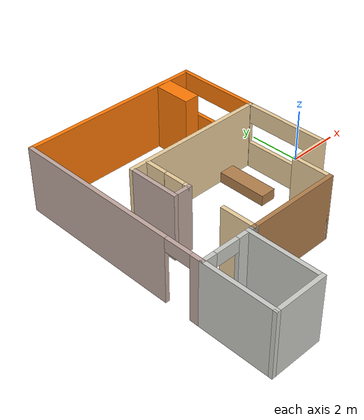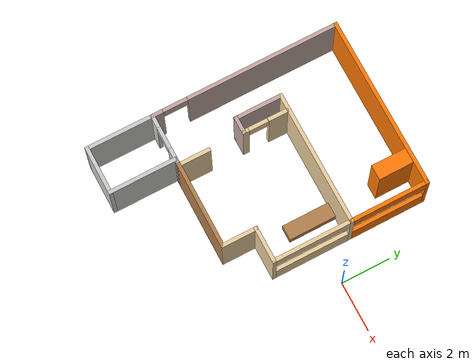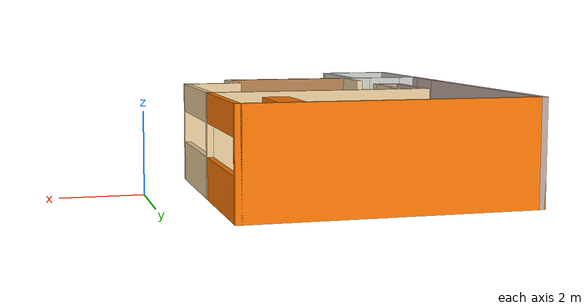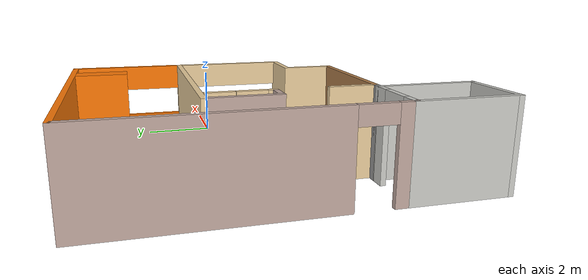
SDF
<?xml version='1.0'?>
<sdf version='1.6'>
  <model name='house'>
    <pose frame=''>-4.827 -0.992 0 0 -0 0</pose>
    <link name='Wall_10'>
      <pose frame=''>-2.5 -2.475 0 0 -0 0</pose>
      <visual name='Wall_10_Visual_0'>
        <pose frame=''>-0.717586 0 1.25 0 -0 0</pose>
        <geometry>
          <box>
            <size>0.564828 0.15 2.5</size>
          </box>
        </geometry>
        <material>
          <script>
            <uri>file://media/materials/scripts/gazebo.material</uri>
            <name>Gazebo/CeilingTiled</name>
          </script>
          <ambient>1 1 1 1</ambient>
        </material>
        <meta>
          <layer>0</layer>
        </meta>
      </visual>
      <collision name='Wall_10_Collision_0'>
        <geometry>
          <box>
            <size>0.564828 0.15 2.5</size>
          </box>
        </geometry>
        <pose frame=''>-0.717586 0 1.25 0 -0 0</pose>
      </collision>
      <visual name='Wall_10_Visual_1'>
        <pose frame=''>0.732414 0 1.25 0 -0 0</pose>
        <geometry>
          <box>
            <size>0.535172 0.15 2.5</size>
          </box>
        </geometry>
        <material>
          <script>
            <uri>file://media/materials/scripts/gazebo.material</uri>
            <name>Gazebo/CeilingTiled</name>
          </script>
          <ambient>1 1 1 1</ambient>
        </material>
        <meta>
          <layer>0</layer>
        </meta>
      </visual>
      <collision name='Wall_10_Collision_1'>
        <geometry>
          <box>
            <size>0.535172 0.15 2.5</size>
          </box>
        </geometry>
        <pose frame=''>0.732414 0 1.25 0 -0 0</pose>
      </collision>
      <visual name='Wall_10_Visual_2'>
        <pose frame=''>0.014828 0 2.25 0 -0 0</pose>
        <geometry>
          <box>
            <size>0.9 0.15 0.5</size>
          </box>
        </geometry>
        <material>
          <script>
            <uri>file://media/materials/scripts/gazebo.material</uri>
            <name>Gazebo/CeilingTiled</name>
          </script>
          <ambient>1 1 1 1</ambient>
        </material>
        <meta>
          <layer>0</layer>
        </meta>
      </visual>
      <collision name='Wall_10_Collision_2'>
        <geometry>
          <box>
            <size>0.9 0.15 0.5</size>
          </box>
        </geometry>
        <pose frame=''>0.014828 0 2.25 0 -0 0</pose>
      </collision>
    </link>
    <link name='Wall_11'>
      <collision name='Wall_11_Collision'>
        <geometry>
          <box>
            <size>2.8 0.15 2.5</size>
          </box>
        </geometry>
        <pose frame=''>0 0 1.25 0 -0 0</pose>
      </collision>
      <visual name='Wall_11_Visual'>
        <pose frame=''>0 0 1.25 0 -0 0</pose>
        <geometry>
          <box>
            <size>2.8 0.15 2.5</size>
          </box>
        </geometry>
        <material>
          <script>
            <uri>file://media/materials/scripts/gazebo.material</uri>
            <name>Gazebo/CeilingTiled</name>
          </script>
          <ambient>1 1 1 1</ambient>
        </material>
        <meta>
          <layer>0</layer>
        </meta>
      </visual>
      <pose frame=''>-1.575 -3.8 0 0 0 -1.5708</pose>
    </link>
    <link name='Wall_13'>
      <collision name='Wall_13_Collision'>
        <geometry>
          <box>
            <size>2 0.15 2.5</size>
          </box>
        </geometry>
        <pose frame=''>0 0 1.25 0 -0 0</pose>
      </collision>
      <visual name='Wall_13_Visual'>
        <pose frame=''>0 0 1.25 0 -0 0</pose>
        <geometry>
          <box>
            <size>2 0.15 2.5</size>
          </box>
        </geometry>
        <material>
          <script>
            <uri>file://media/materials/scripts/gazebo.material</uri>
            <name>Gazebo/CeilingTiled</name>
          </script>
          <ambient>1 1 1 1</ambient>
        </material>
        <meta>
          <layer>0</layer>
        </meta>
      </visual>
      <pose frame=''>-2.5 -5.125 0 0 -0 3.14159</pose>
    </link>
    <link name='Wall_15'>
      <pose frame=''>-3.425 1.325 0 0 -0 1.5708</pose>
      <visual name='Wall_15_Visual_0'>
        <pose frame=''>-3.62716 0 1.25 0 -0 0</pose>
        <geometry>
          <box>
            <size>0.495682 0.15 2.5</size>
          </box>
        </geometry>
        <material>
          <script>
            <uri>file://media/materials/scripts/gazebo.material</uri>
            <name>Gazebo/Grey</name>
          </script>
          <ambient>0.760784 0.662745 0.627451 1</ambient>
        </material>
        <meta>
          <layer>0</layer>
        </meta>
      </visual>
      <collision name='Wall_15_Collision_0'>
        <geometry>
          <box>
            <size>0.495682 0.15 2.5</size>
          </box>
        </geometry>
        <pose frame=''>-3.62716 0 1.25 0 -0 0</pose>
      </collision>
      <visual name='Wall_15_Visual_1'>
        <pose frame=''>0.747841 0 1.25 0 -0 0</pose>
        <geometry>
          <box>
            <size>6.25432 0.15 2.5</size>
          </box>
        </geometry>
        <material>
          <script>
            <uri>file://media/materials/scripts/gazebo.material</uri>
            <name>Gazebo/Grey</name>
          </script>
          <ambient>0.760784 0.662745 0.627451 1</ambient>
        </material>
        <meta>
          <layer>0</layer>
        </meta>
      </visual>
      <collision name='Wall_15_Collision_1'>
        <geometry>
          <box>
            <size>6.25432 0.15 2.5</size>
          </box>
        </geometry>
        <pose frame=''>0.747841 0 1.25 0 -0 0</pose>
      </collision>
      <visual name='Wall_15_Visual_2'>
        <pose frame=''>-2.87932 0 2.25 0 -0 0</pose>
        <geometry>
          <box>
            <size>1 0.15 0.5</size>
          </box>
        </geometry>
        <material>
          <script>
            <uri>file://media/materials/scripts/gazebo.material</uri>
            <name>Gazebo/Grey</name>
          </script>
          <ambient>0.760784 0.662745 0.627451 1</ambient>
        </material>
        <meta>
          <layer>0</layer>
        </meta>
      </visual>
      <collision name='Wall_15_Collision_2'>
        <geometry>
          <box>
            <size>1 0.15 0.5</size>
          </box>
        </geometry>
        <pose frame=''>-2.87932 0 2.25 0 -0 0</pose>
      </collision>
    </link>
    <link name='Wall_17'>
      <collision name='Wall_17_Collision'>
        <geometry>
          <box>
            <size>7 0.15 2.5</size>
          </box>
        </geometry>
        <pose frame=''>0 0 1.25 0 -0 0</pose>
      </collision>
      <visual name='Wall_17_Visual'>
        <pose frame=''>0 0 1.25 0 -0 0</pose>
        <geometry>
          <box>
            <size>7 0.15 2.5</size>
          </box>
        </geometry>
        <material>
          <script>
            <uri>file://media/materials/scripts/gazebo.material</uri>
            <name>Gazebo/Grey</name>
          </script>
          <ambient>0.996078 0.47451 0.0196078 1</ambient>
        </material>
        <meta>
          <layer>0</layer>
        </meta>
      </visual>
      <pose frame=''>0 5.125 0 0 -0 0</pose>
    </link>
    <link name='Wall_18'>
      <pose frame=''>3.425 3.575 0 0 0 -1.5708</pose>
      <visual name='Wall_18_Visual_0'>
        <pose frame=''>-1.55285 0 1.25 0 -0 0</pose>
        <geometry>
          <box>
            <size>0.144301 0.15 2.5</size>
          </box>
        </geometry>
        <material>
          <script>
            <uri>file://media/materials/scripts/gazebo.material</uri>
            <name>Gazebo/Grey</name>
          </script>
          <ambient>0.996078 0.47451 0.0196078 1</ambient>
        </material>
        <meta>
          <layer>0</layer>
        </meta>
      </visual>
      <collision name='Wall_18_Collision_0'>
        <geometry>
          <box>
            <size>0.144301 0.15 2.5</size>
          </box>
        </geometry>
        <pose frame=''>-1.55285 0 1.25 0 -0 0</pose>
      </collision>
      <visual name='Wall_18_Visual_1'>
        <pose frame=''>0.072151 0 0.5 0 -0 0</pose>
        <geometry>
          <box>
            <size>3.1057 0.15 1</size>
          </box>
        </geometry>
        <material>
          <script>
            <uri>file://media/materials/scripts/gazebo.material</uri>
            <name>Gazebo/Grey</name>
          </script>
          <ambient>0.996078 0.47451 0.0196078 1</ambient>
        </material>
        <meta>
          <layer>0</layer>
        </meta>
      </visual>
      <collision name='Wall_18_Collision_1'>
        <geometry>
          <box>
            <size>3.1057 0.15 1</size>
          </box>
        </geometry>
        <pose frame=''>0.072151 0 0.5 0 -0 0</pose>
      </collision>
      <visual name='Wall_18_Visual_2'>
        <pose frame=''>1.57465 0 1.75 0 -0 0</pose>
        <geometry>
          <box>
            <size>0.100699 0.15 1.5</size>
          </box>
        </geometry>
        <material>
          <script>
            <uri>file://media/materials/scripts/gazebo.material</uri>
            <name>Gazebo/Grey</name>
          </script>
          <ambient>0.996078 0.47451 0.0196078 1</ambient>
        </material>
        <meta>
          <layer>0</layer>
        </meta>
      </visual>
      <collision name='Wall_18_Collision_2'>
        <geometry>
          <box>
            <size>0.100699 0.15 1.5</size>
          </box>
        </geometry>
        <pose frame=''>1.57465 0 1.75 0 -0 0</pose>
      </collision>
      <visual name='Wall_18_Visual_3'>
        <pose frame=''>0.021801 0 2.15 0 -0 0</pose>
        <geometry>
          <box>
            <size>3.005 0.15 0.7</size>
          </box>
        </geometry>
        <material>
          <script>
            <uri>file://media/materials/scripts/gazebo.material</uri>
            <name>Gazebo/Grey</name>
          </script>
          <ambient>0.996078 0.47451 0.0196078 1</ambient>
        </material>
        <meta>
          <layer>0</layer>
        </meta>
      </visual>
      <collision name='Wall_18_Collision_3'>
        <geometry>
          <box>
            <size>3.005 0.15 0.7</size>
          </box>
        </geometry>
        <pose frame=''>0.021801 0 2.15 0 -0 0</pose>
      </collision>
    </link>
    <link name='Wall_19'>
      <collision name='Wall_19_Collision'>
        <geometry>
          <box>
            <size>5.5 0.15 2.5</size>
          </box>
        </geometry>
        <pose frame=''>0 0 1.25 0 -0 0</pose>
      </collision>
      <visual name='Wall_19_Visual'>
        <pose frame=''>0 0 1.25 0 -0 0</pose>
        <geometry>
          <box>
            <size>5.5 0.15 2.5</size>
          </box>
        </geometry>
        <material>
          <script>
            <uri>file://media/materials/scripts/gazebo.material</uri>
            <name>Gazebo/Grey</name>
          </script>
          <ambient>0.921569 0.807843 0.615686 1</ambient>
        </material>
        <meta>
          <layer>0</layer>
        </meta>
      </visual>
      <pose frame=''>0.75 2.025 0 0 -0 3.14159</pose>
    </link>
    <link name='Wall_2'>
      <collision name='Wall_2_Collision'>
        <geometry>
          <box>
            <size>2.8 0.15 2.5</size>
          </box>
        </geometry>
        <pose frame=''>0 0 1.25 0 -0 0</pose>
      </collision>
      <visual name='Wall_2_Visual'>
        <pose frame=''>0 0 1.25 0 -0 0</pose>
        <geometry>
          <box>
            <size>2.8 0.15 2.5</size>
          </box>
        </geometry>
        <material>
          <script>
            <uri>file://media/materials/scripts/gazebo.material</uri>
            <name>Gazebo/CeilingTiled</name>
          </script>
          <ambient>1 1 1 1</ambient>
        </material>
        <meta>
          <layer>0</layer>
        </meta>
      </visual>
      <pose frame=''>-3.425 -3.8 0 0 -0 1.5708</pose>
    </link>
    <link name='Wall_23'>
      <collision name='Wall_23_Collision'>
        <geometry>
          <box>
            <size>2 0.15 2.5</size>
          </box>
        </geometry>
        <pose frame=''>0 0 1.25 0 -0 0</pose>
      </collision>
      <visual name='Wall_23_Visual'>
        <pose frame=''>0 0 1.25 0 -0 0</pose>
        <geometry>
          <box>
            <size>2 0.15 2.5</size>
          </box>
        </geometry>
        <material>
          <script>
            <uri>file://media/materials/scripts/gazebo.material</uri>
            <name>Gazebo/Grey</name>
          </script>
          <ambient>0.760784 0.662745 0.627451 1</ambient>
        </material>
        <meta>
          <layer>0</layer>
        </meta>
      </visual>
      <pose frame=''>-1.925 1.1 0 0 0 -1.5708</pose>
    </link>
    <link name='Wall_24'>
      <collision name='Wall_24_Collision'>
        <geometry>
          <box>
            <size>0.75 0.15 2.5</size>
          </box>
        </geometry>
        <pose frame=''>0 0 1.25 0 -0 0</pose>
      </collision>
      <visual name='Wall_24_Visual'>
        <pose frame=''>0 0 1.25 0 -0 0</pose>
        <geometry>
          <box>
            <size>0.75 0.15 2.5</size>
          </box>
        </geometry>
        <material>
          <script>
            <uri>file://media/materials/scripts/gazebo.material</uri>
            <name>Gazebo/Grey</name>
          </script>
          <ambient>0.760784 0.662745 0.627451 1</ambient>
        </material>
        <meta>
          <layer>0</layer>
        </meta>
      </visual>
      <pose frame=''>-1.625 0.175 0 0 -0 0</pose>
    </link>
    <link name='Wall_37'>
      <collision name='Wall_37_Collision'>
        <geometry>
          <box>
            <size>1.35 0.15 2.5</size>
          </box>
        </geometry>
        <pose frame=''>0 0 1.25 0 -0 0</pose>
      </collision>
      <visual name='Wall_37_Visual'>
        <pose frame=''>0 0 1.25 0 -0 0</pose>
        <geometry>
          <box>
            <size>1.35 0.15 2.5</size>
          </box>
        </geometry>
        <material>
          <script>
            <uri>file://media/materials/scripts/gazebo.material</uri>
            <name>Gazebo/Grey</name>
          </script>
          <ambient>0.921569 0.807843 0.615686 1</ambient>
        </material>
        <meta>
          <layer>0</layer>
        </meta>
      </visual>
      <pose frame=''>-1.325 -1.875 0 0 0 -1.5708</pose>
    </link>
    <link name='Wall_39'>
      <collision name='Wall_39_Collision'>
        <geometry>
          <box>
            <size>0.4 0.15 2.5</size>
          </box>
        </geometry>
        <pose frame=''>0 0 1.25 0 -0 0</pose>
      </collision>
      <visual name='Wall_39_Visual'>
        <pose frame=''>0 0 1.25 0 -0 0</pose>
        <geometry>
          <box>
            <size>0.4 0.15 2.5</size>
          </box>
        </geometry>
        <material>
          <script>
            <uri>file://media/materials/scripts/gazebo.material</uri>
            <name>Gazebo/Grey</name>
          </script>
          <ambient>1 1 1 1</ambient>
        </material>
        <meta>
          <layer>0</layer>
        </meta>
      </visual>
      <pose frame=''>-1.45 -2.475 0 0 -0 3.14159</pose>
    </link>
    <link name='Wall_41'>
      <pose frame=''>-1.325 1.1 0 0 -0 1.5708</pose>
      <visual name='Wall_41_Visual_0'>
        <pose frame=''>-0.864061 0 1.25 0 -0 0</pose>
        <geometry>
          <box>
            <size>0.271877 0.15 2.5</size>
          </box>
        </geometry>
        <material>
          <script>
            <uri>file://media/materials/scripts/gazebo.material</uri>
            <name>Gazebo/Grey</name>
          </script>
          <ambient>0.921569 0.807843 0.615686 1</ambient>
        </material>
        <meta>
          <layer>0</layer>
        </meta>
      </visual>
      <collision name='Wall_41_Collision_0'>
        <geometry>
          <box>
            <size>0.271877 0.15 2.5</size>
          </box>
        </geometry>
        <pose frame=''>-0.864061 0 1.25 0 -0 0</pose>
      </collision>
      <visual name='Wall_41_Visual_1'>
        <pose frame=''>0.535939 0 1.25 0 -0 0</pose>
        <geometry>
          <box>
            <size>0.928123 0.15 2.5</size>
          </box>
        </geometry>
        <material>
          <script>
            <uri>file://media/materials/scripts/gazebo.material</uri>
            <name>Gazebo/Grey</name>
          </script>
          <ambient>0.921569 0.807843 0.615686 1</ambient>
        </material>
        <meta>
          <layer>0</layer>
        </meta>
      </visual>
      <collision name='Wall_41_Collision_1'>
        <geometry>
          <box>
            <size>0.928123 0.15 2.5</size>
          </box>
        </geometry>
        <pose frame=''>0.535939 0 1.25 0 -0 0</pose>
      </collision>
      <visual name='Wall_41_Visual_2'>
        <pose frame=''>0.930381 0 1.25 0 -0 0</pose>
        <geometry>
          <box>
            <size>0.139239 0.15 2.5</size>
          </box>
        </geometry>
        <material>
          <script>
            <uri>file://media/materials/scripts/gazebo.material</uri>
            <name>Gazebo/Grey</name>
          </script>
          <ambient>0.921569 0.807843 0.615686 1</ambient>
        </material>
        <meta>
          <layer>0</layer>
        </meta>
      </visual>
      <collision name='Wall_41_Collision_2'>
        <geometry>
          <box>
            <size>0.139239 0.15 2.5</size>
          </box>
        </geometry>
        <pose frame=''>0.930381 0 1.25 0 -0 0</pose>
      </collision>
      <visual name='Wall_41_Visual_3'>
        <pose frame=''>-0.333681 0 2.25 0 -0 0</pose>
        <geometry>
          <box>
            <size>0.788884 0.15 0.5</size>
          </box>
        </geometry>
        <material>
          <script>
            <uri>file://media/materials/scripts/gazebo.material</uri>
            <name>Gazebo/Grey</name>
          </script>
          <ambient>0.921569 0.807843 0.615686 1</ambient>
        </material>
        <meta>
          <layer>0</layer>
        </meta>
      </visual>
      <collision name='Wall_41_Collision_3'>
        <geometry>
          <box>
            <size>0.788884 0.15 0.5</size>
          </box>
        </geometry>
        <pose frame=''>-0.333681 0 2.25 0 -0 0</pose>
      </collision>
    </link>
    <link name='Wall_48'>
      <collision name='Wall_48_Collision'>
        <geometry>
          <box>
            <size>3.55 0.15 2.5</size>
          </box>
        </geometry>
        <pose frame=''>0 0 1.25 0 -0 0</pose>
      </collision>
      <visual name='Wall_48_Visual'>
        <pose frame=''>0 0 1.25 0 -0 0</pose>
        <geometry>
          <box>
            <size>3.55 0.15 2.5</size>
          </box>
        </geometry>
        <material>
          <script>
            <uri>file://media/materials/scripts/gazebo.material</uri>
            <name>Gazebo/Wood</name>
          </script>
          <ambient>1 1 1 1</ambient>
        </material>
        <meta>
          <layer>0</layer>
        </meta>
      </visual>
      <pose frame=''>0.375 -2.475 0 0 -0 0</pose>
    </link>
    <link name='Wall_53'>
      <collision name='Wall_53_Collision'>
        <geometry>
          <box>
            <size>1.4 0.6 2.5</size>
          </box>
        </geometry>
        <pose frame=''>0 0 1.25 0 -0 0</pose>
      </collision>
      <visual name='Wall_53_Visual'>
        <pose frame=''>0 0 1.25 0 -0 0</pose>
        <geometry>
          <box>
            <size>1.4 0.6 2.5</size>
          </box>
        </geometry>
        <material>
          <script>
            <uri>file://media/materials/scripts/gazebo.material</uri>
            <name>Gazebo/Grey</name>
          </script>
          <ambient>0.996078 0.47451 0.0196078 1</ambient>
        </material>
        <meta>
          <layer>0</layer>
        </meta>
      </visual>
      <pose frame=''>2.26 4.344 0 0 -0 1.5708</pose>
    </link>
    <link name='Wall_58'>
      <pose frame=''>3.425 0.45 0 0 0 -1.5708</pose>
      <visual name='Wall_58_Visual_0'>
        <pose frame=''>-1.5702 0 1.25 0 -0 0</pose>
        <geometry>
          <box>
            <size>0.159609 0.15 2.5</size>
          </box>
        </geometry>
        <material>
          <script>
            <uri>file://media/materials/scripts/gazebo.material</uri>
            <name>Gazebo/Grey</name>
          </script>
          <ambient>0.921569 0.807843 0.615686 1</ambient>
        </material>
        <meta>
          <layer>0</layer>
        </meta>
      </visual>
      <collision name='Wall_58_Collision_0'>
        <geometry>
          <box>
            <size>0.159609 0.15 2.5</size>
          </box>
        </geometry>
        <pose frame=''>-1.5702 0 1.25 0 -0 0</pose>
      </collision>
      <visual name='Wall_58_Visual_1'>
        <pose frame=''>0.079804 0 0.5 0 -0 0</pose>
        <geometry>
          <box>
            <size>3.14039 0.15 1</size>
          </box>
        </geometry>
        <material>
          <script>
            <uri>file://media/materials/scripts/gazebo.material</uri>
            <name>Gazebo/Grey</name>
          </script>
          <ambient>0.921569 0.807843 0.615686 1</ambient>
        </material>
        <meta>
          <layer>0</layer>
        </meta>
      </visual>
      <collision name='Wall_58_Collision_1'>
        <geometry>
          <box>
            <size>3.14039 0.15 1</size>
          </box>
        </geometry>
        <pose frame=''>0.079804 0 0.5 0 -0 0</pose>
      </collision>
      <visual name='Wall_58_Visual_2'>
        <pose frame=''>1.6023 0 1.75 0 -0 0</pose>
        <geometry>
          <box>
            <size>0.095391 0.15 1.5</size>
          </box>
        </geometry>
        <material>
          <script>
            <uri>file://media/materials/scripts/gazebo.material</uri>
            <name>Gazebo/Grey</name>
          </script>
          <ambient>0.921569 0.807843 0.615686 1</ambient>
        </material>
        <meta>
          <layer>0</layer>
        </meta>
      </visual>
      <collision name='Wall_58_Collision_2'>
        <geometry>
          <box>
            <size>0.095391 0.15 1.5</size>
          </box>
        </geometry>
        <pose frame=''>1.6023 0 1.75 0 -0 0</pose>
      </collision>
      <visual name='Wall_58_Visual_3'>
        <pose frame=''>0.032109 0 2.15 0 -0 0</pose>
        <geometry>
          <box>
            <size>3.045 0.15 0.7</size>
          </box>
        </geometry>
        <material>
          <script>
            <uri>file://media/materials/scripts/gazebo.material</uri>
            <name>Gazebo/Grey</name>
          </script>
          <ambient>0.921569 0.807843 0.615686 1</ambient>
        </material>
        <meta>
          <layer>0</layer>
        </meta>
      </visual>
      <collision name='Wall_58_Collision_3'>
        <geometry>
          <box>
            <size>3.045 0.15 0.7</size>
          </box>
        </geometry>
        <pose frame=''>0.032109 0 2.15 0 -0 0</pose>
      </collision>
    </link>
    <link name='Wall_60'>
      <collision name='Wall_60_Collision'>
        <geometry>
          <box>
            <size>1.5 0.15 2.5</size>
          </box>
        </geometry>
        <pose frame=''>0 0 1.25 0 -0 0</pose>
      </collision>
      <visual name='Wall_60_Visual'>
        <pose frame=''>0 0 1.25 0 -0 0</pose>
        <geometry>
          <box>
            <size>1.5 0.15 2.5</size>
          </box>
        </geometry>
        <material>
          <script>
            <uri>file://media/materials/scripts/gazebo.material</uri>
            <name>Gazebo/Grey</name>
          </script>
          <ambient>0.921569 0.807843 0.615686 1</ambient>
        </material>
        <meta>
          <layer>0</layer>
        </meta>
      </visual>
      <pose frame=''>2.75 -1.125 0 0 -0 3.14159</pose>
    </link>
    <link name='Wall_62'>
      <collision name='Wall_62_Collision'>
        <geometry>
          <box>
            <size>1.5 0.15 2.5</size>
          </box>
        </geometry>
        <pose frame=''>0 0 1.25 0 -0 0</pose>
      </collision>
      <visual name='Wall_62_Visual'>
        <pose frame=''>0 0 1.25 0 -0 0</pose>
        <geometry>
          <box>
            <size>1.5 0.15 2.5</size>
          </box>
        </geometry>
        <material>
          <script>
            <uri>file://media/materials/scripts/gazebo.material</uri>
            <name>Gazebo/Grey</name>
          </script>
          <ambient>0.921569 0.807843 0.615686 1</ambient>
        </material>
        <meta>
          <layer>0</layer>
        </meta>
      </visual>
      <pose frame=''>2.075 -1.8 0 0 -0 1.5708</pose>
    </link>
    <link name='Wall_65'>
      <collision name='Wall_65_Collision'>
        <geometry>
          <box>
            <size>1.95 0.6 0.4</size>
          </box>
        </geometry>
        <pose frame=''>0 0 0.2 0 -0 0</pose>
      </collision>
      <visual name='Wall_65_Visual'>
        <pose frame=''>0 0 0.2 0 -0 0</pose>
        <geometry>
          <box>
            <size>1.95 0.6 0.4</size>
          </box>
        </geometry>
        <material>
          <script>
            <uri>file://media/materials/scripts/gazebo.material</uri>
            <name>Gazebo/Wood</name>
          </script>
          <ambient>1 1 1 1</ambient>
        </material>
        <meta>
          <layer>0</layer>
        </meta>
      </visual>
      <pose frame=''>2.26 1.006 0 0 0 -1.5708</pose>
    </link>
    <static>1</static>
  </model>
</sdf>
